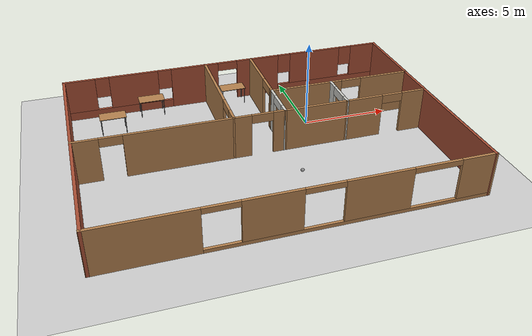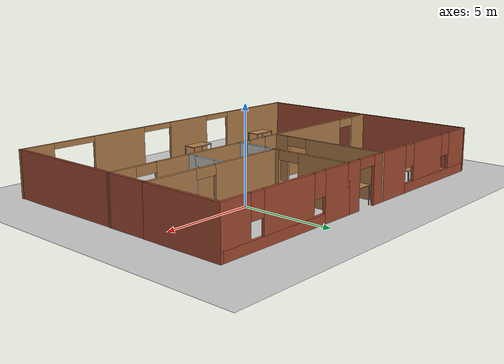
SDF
<sdf version="1.6">
 <world name="default">
  <model name="ground_plane">
   <static>1</static>
   <link name="link">
    <collision name="collision">
     <geometry><plane><normal>0 0 1</normal><size>100 100</size></plane></geometry>
     <surface><friction><ode><mu>100</mu><mu2>50</mu2></ode></friction></surface>
    </collision>
    <visual name="visual">
     <cast_shadows>0</cast_shadows>
     <geometry><plane><normal>0 0 1</normal><size>100 100</size></plane></geometry>
     <material>
      <script><uri>file://media/materials/scripts/gazebo.material</uri><name>Gazebo/Grey</name></script>
     </material>
    </visual>
   </link>
  </model>
  <model name="table">
   <static>1</static>
   <link name="link">
    <collision name="surface">
     <pose>0 0 1 0 -0 0</pose>
     <geometry><box><size>1.5 0.8 0.03</size></box></geometry>
     <surface><friction><ode><mu>0.6</mu><mu2>0.6</mu2></ode></friction></surface>
    </collision>
    <visual name="visual1">
     <pose>0 0 1 0 -0 0</pose>
     <geometry><box><size>1.5 0.8 0.03</size></box></geometry>
     <material>
      <script><uri>file://media/materials/scripts/gazebo.material</uri><name>Gazebo/Wood</name></script>
     </material>
    </visual>
    <collision name="front_left_leg">
     <pose>0.68 0.38 0.5 0 -0 0</pose>
     <geometry><cylinder><radius>0.02</radius><length>1</length></cylinder></geometry>
    </collision>
    <visual name="front_left_leg">
     <pose>0.68 0.38 0.5 0 -0 0</pose>
     <geometry><cylinder><radius>0.02</radius><length>1</length></cylinder></geometry>
     <material>
      <script><uri>file://media/materials/scripts/gazebo.material</uri><name>Gazebo/Grey</name></script>
     </material>
    </visual>
    <collision name="front_right_leg">
     <pose>0.68 -0.38 0.5 0 -0 0</pose>
     <geometry><cylinder><radius>0.02</radius><length>1</length></cylinder></geometry>
    </collision>
    <visual name="front_right_leg">
     <pose>0.68 -0.38 0.5 0 -0 0</pose>
     <geometry><cylinder><radius>0.02</radius><length>1</length></cylinder></geometry>
     <material>
      <script><uri>file://media/materials/scripts/gazebo.material</uri><name>Gazebo/Grey</name></script>
     </material>
    </visual>
    <collision name="back_right_leg">
     <pose>-0.68 -0.38 0.5 0 -0 0</pose>
     <geometry><cylinder><radius>0.02</radius><length>1</length></cylinder></geometry>
    </collision>
    <visual name="back_right_leg">
     <pose>-0.68 -0.38 0.5 0 -0 0</pose>
     <geometry><cylinder><radius>0.02</radius><length>1</length></cylinder></geometry>
     <material>
      <script><uri>file://media/materials/scripts/gazebo.material</uri><name>Gazebo/Grey</name></script>
     </material>
    </visual>
    <collision name="back_left_leg">
     <pose>-0.68 0.38 0.5 0 -0 0</pose>
     <geometry><cylinder><radius>0.02</radius><length>1</length></cylinder></geometry>
    </collision>
    <visual name="back_left_leg">
     <pose>-0.68 0.38 0.5 0 -0 0</pose>
     <geometry><cylinder><radius>0.02</radius><length>1</length></cylinder></geometry>
     <material>
      <script><uri>file://media/materials/scripts/gazebo.material</uri><name>Gazebo/Grey</name></script>
     </material>
    </visual>
   </link>
   <pose>-10.5468 -8.35102 0 0 -0 0</pose>
  </model>
  <model name="Building">
   <pose>-3.56522 -2.42436 0 0 -0 0</pose>
   <link name="Wall_0">
    <pose>0.00123 6.80703 0 0 -0 0</pose>
    <visual name="Wall_0_Visual_0">
     <pose>-1.07927 0 1.25 0 -0 0</pose>
     <geometry><box><size>0.841459 0.15 2.5</size></box></geometry>
     <material>
      <script><uri>file://media/materials/scripts/gazebo.material</uri><name>Gazebo/Bricks</name></script>
      <ambient>1 1 1 1</ambient>
     </material>
     <meta><layer>0</layer></meta>
    </visual>
    <collision name="Wall_0_Collision_0">
     <geometry><box><size>0.841459 0.15 2.5</size></box></geometry>
     <pose>-1.07927 0 1.25 0 -0 0</pose>
    </collision>
    <visual name="Wall_0_Visual_1">
     <pose>1.02073 0 1.25 0 -0 0</pose>
     <geometry><box><size>0.958541 0.15 2.5</size></box></geometry>
     <material>
      <script><uri>file://media/materials/scripts/gazebo.material</uri><name>Gazebo/Bricks</name></script>
      <ambient>1 1 1 1</ambient>
     </material>
     <meta><layer>0</layer></meta>
    </visual>
    <collision name="Wall_0_Collision_1">
     <geometry><box><size>0.958541 0.15 2.5</size></box></geometry>
     <pose>1.02073 0 1.25 0 -0 0</pose>
    </collision>
    <visual name="Wall_0_Visual_2">
     <pose>-0.058541 0 2.25 0 -0 0</pose>
     <geometry><box><size>1.2 0.15 0.5</size></box></geometry>
     <material>
      <script><uri>file://media/materials/scripts/gazebo.material</uri><name>Gazebo/Bricks</name></script>
      <ambient>1 1 1 1</ambient>
     </material>
     <meta><layer>0</layer></meta>
    </visual>
    <collision name="Wall_0_Collision_2">
     <geometry><box><size>1.2 0.15 0.5</size></box></geometry>
     <pose>-0.058541 0 2.25 0 -0 0</pose>
    </collision>
   </link>
   <link name="Wall_1">
    <pose>1.42623 4.63203 0 0 0 -1.5708</pose>
    <visual name="Wall_1_Visual_0">
     <pose>-0.787008 0 1.25 0 -0 0</pose>
     <geometry><box><size>2.92598 0.15 2.5</size></box></geometry>
     <material>
      <script><uri>file://media/materials/scripts/gazebo.material</uri><name>Gazebo/Wood</name></script>
      <ambient>1 1 1 1</ambient>
     </material>
     <meta><layer>0</layer></meta>
    </visual>
    <collision name="Wall_1_Collision_0">
     <geometry><box><size>2.92598 0.15 2.5</size></box></geometry>
     <pose>-0.787008 0 1.25 0 -0 0</pose>
    </collision>
    <visual name="Wall_1_Visual_1">
     <pose>2.06299 0 1.25 0 -0 0</pose>
     <geometry><box><size>0.374017 0.15 2.5</size></box></geometry>
     <material>
      <script><uri>file://media/materials/scripts/gazebo.material</uri><name>Gazebo/Wood</name></script>
      <ambient>1 1 1 1</ambient>
     </material>
     <meta><layer>0</layer></meta>
    </visual>
    <collision name="Wall_1_Collision_1">
     <geometry><box><size>0.374017 0.15 2.5</size></box></geometry>
     <pose>2.06299 0 1.25 0 -0 0</pose>
    </collision>
    <visual name="Wall_1_Visual_2">
     <pose>1.27598 0 2.25 0 -0 0</pose>
     <geometry><box><size>1.2 0.15 0.5</size></box></geometry>
     <material>
      <script><uri>file://media/materials/scripts/gazebo.material</uri><name>Gazebo/Wood</name></script>
      <ambient>1 1 1 1</ambient>
     </material>
     <meta><layer>0</layer></meta>
    </visual>
    <collision name="Wall_1_Collision_2">
     <geometry><box><size>1.2 0.15 0.5</size></box></geometry>
     <pose>1.27598 0 2.25 0 -0 0</pose>
    </collision>
   </link>
   <link name="Wall_10">
    <pose>5.02623 1.28203 0 0 -0 1.5708</pose>
    <visual name="Wall_10_Visual_0">
     <pose>-0.954209 0 1.25 0 -0 0</pose>
     <geometry><box><size>0.591582 0.15 2.5</size></box></geometry>
     <material>
      <script><uri>file://media/materials/scripts/gazebo.material</uri><name>Gazebo/CeilingTiled</name></script>
      <ambient>1 1 1 1</ambient>
     </material>
     <meta><layer>0</layer></meta>
    </visual>
    <collision name="Wall_10_Collision_0">
     <geometry><box><size>0.591582 0.15 2.5</size></box></geometry>
     <pose>-0.954209 0 1.25 0 -0 0</pose>
    </collision>
    <visual name="Wall_10_Visual_1">
     <pose>0.895791 0 1.25 0 -0 0</pose>
     <geometry><box><size>0.708418 0.15 2.5</size></box></geometry>
     <material>
      <script><uri>file://media/materials/scripts/gazebo.material</uri><name>Gazebo/CeilingTiled</name></script>
      <ambient>1 1 1 1</ambient>
     </material>
     <meta><layer>0</layer></meta>
    </visual>
    <collision name="Wall_10_Collision_1">
     <geometry><box><size>0.708418 0.15 2.5</size></box></geometry>
     <pose>0.895791 0 1.25 0 -0 0</pose>
    </collision>
    <visual name="Wall_10_Visual_2">
     <pose>-0.058418 0 2.25 0 -0 0</pose>
     <geometry><box><size>1.2 0.15 0.5</size></box></geometry>
     <material>
      <script><uri>file://media/materials/scripts/gazebo.material</uri><name>Gazebo/CeilingTiled</name></script>
      <ambient>1 1 1 1</ambient>
     </material>
     <meta><layer>0</layer></meta>
    </visual>
    <collision name="Wall_10_Collision_2">
     <geometry><box><size>1.2 0.15 0.5</size></box></geometry>
     <pose>-0.058418 0 2.25 0 -0 0</pose>
    </collision>
   </link>
   <link name="Wall_14">
    <pose>-1.42237 3.45929 0 0 0 -1.57038</pose>
    <visual name="Wall_14_Visual_0">
     <pose>-1.07421 0 1.25 0 -0 0</pose>
     <geometry><box><size>4.69716 0.15 2.5</size></box></geometry>
     <material>
      <script><uri>file://media/materials/scripts/gazebo.material</uri><name>Gazebo/Wood</name></script>
      <ambient>1 1 1 1</ambient>
     </material>
     <meta><layer>0</layer></meta>
    </visual>
    <collision name="Wall_14_Collision_0">
     <geometry><box><size>4.69716 0.15 2.5</size></box></geometry>
     <pose>-1.07421 0 1.25 0 -0 0</pose>
    </collision>
    <visual name="Wall_14_Visual_1">
     <pose>2.94858 0 1.25 0 -0 0</pose>
     <geometry><box><size>0.94843 0.15 2.5</size></box></geometry>
     <material>
      <script><uri>file://media/materials/scripts/gazebo.material</uri><name>Gazebo/Wood</name></script>
      <ambient>1 1 1 1</ambient>
     </material>
     <meta><layer>0</layer></meta>
    </visual>
    <collision name="Wall_14_Collision_1">
     <geometry><box><size>0.94843 0.15 2.5</size></box></geometry>
     <pose>2.94858 0 1.25 0 -0 0</pose>
    </collision>
    <visual name="Wall_14_Visual_2">
     <pose>1.87437 0 2.25 0 -0 0</pose>
     <geometry><box><size>1.2 0.15 0.5</size></box></geometry>
     <material>
      <script><uri>file://media/materials/scripts/gazebo.material</uri><name>Gazebo/Wood</name></script>
      <ambient>1 1 1 1</ambient>
     </material>
     <meta><layer>0</layer></meta>
    </visual>
    <collision name="Wall_14_Collision_2">
     <geometry><box><size>1.2 0.15 0.5</size></box></geometry>
     <pose>1.87437 0 2.25 0 -0 0</pose>
    </collision>
   </link>
   <link name="Wall_15">
    <pose>0.002634 0.109288 0 0 0 -0.001586</pose>
    <visual name="Wall_15_Visual_0">
     <pose>-0.976905 0 1.25 0 -0 0</pose>
     <geometry><box><size>1.04339 0.15 2.5</size></box></geometry>
     <material>
      <script><uri>file://media/materials/scripts/gazebo.material</uri><name>Gazebo/Wood</name></script>
      <ambient>1 1 1 1</ambient>
     </material>
     <meta><layer>0</layer></meta>
    </visual>
    <collision name="Wall_15_Collision_0">
     <geometry><box><size>1.04339 0.15 2.5</size></box></geometry>
     <pose>-0.976905 0 1.25 0 -0 0</pose>
    </collision>
    <visual name="Wall_15_Visual_1">
     <pose>1.12169 0 1.25 0 -0 0</pose>
     <geometry><box><size>0.753809 0.15 2.5</size></box></geometry>
     <material>
      <script><uri>file://media/materials/scripts/gazebo.material</uri><name>Gazebo/Wood</name></script>
      <ambient>1 1 1 1</ambient>
     </material>
     <meta><layer>0</layer></meta>
    </visual>
    <collision name="Wall_15_Collision_1">
     <geometry><box><size>0.753809 0.15 2.5</size></box></geometry>
     <pose>1.12169 0 1.25 0 -0 0</pose>
    </collision>
    <visual name="Wall_15_Visual_2">
     <pose>0.144788 0 2.25 0 -0 0</pose>
     <geometry><box><size>1.2 0.15 0.5</size></box></geometry>
     <material>
      <script><uri>file://media/materials/scripts/gazebo.material</uri><name>Gazebo/Wood</name></script>
      <ambient>1 1 1 1</ambient>
     </material>
     <meta><layer>0</layer></meta>
    </visual>
    <collision name="Wall_15_Collision_2">
     <geometry><box><size>1.2 0.15 0.5</size></box></geometry>
     <pose>0.144788 0 2.25 0 -0 0</pose>
    </collision>
   </link>
   <link name="Wall_17">
    <pose>-5.59877 6.80703 0 0 -0 3.14159</pose>
    <visual name="Wall_17_Visual_0">
     <pose>-3.15253 0 1.25 0 -0 0</pose>
     <geometry><box><size>2.19494 0.15 2.5</size></box></geometry>
     <material>
      <script><uri>file://media/materials/scripts/gazebo.material</uri><name>Gazebo/Bricks</name></script>
      <ambient>1 1 1 1</ambient>
     </material>
     <meta><layer>0</layer></meta>
    </visual>
    <collision name="Wall_17_Collision_0">
     <geometry><box><size>2.19494 0.15 2.5</size></box></geometry>
     <pose>-3.15253 0 1.25 0 -0 0</pose>
    </collision>
    <visual name="Wall_17_Visual_1">
     <pose>1.09747 0 0.25 0 -0 0</pose>
     <geometry><box><size>6.30506 0.15 0.5</size></box></geometry>
     <material>
      <script><uri>file://media/materials/scripts/gazebo.material</uri><name>Gazebo/Bricks</name></script>
      <ambient>1 1 1 1</ambient>
     </material>
     <meta><layer>0</layer></meta>
    </visual>
    <collision name="Wall_17_Collision_1">
     <geometry><box><size>6.30506 0.15 0.5</size></box></geometry>
     <pose>1.09747 0 0.25 0 -0 0</pose>
    </collision>
    <visual name="Wall_17_Visual_2">
     <pose>0.184146 0 1.5 0 -0 0</pose>
     <geometry><box><size>2.8784 0.15 2</size></box></geometry>
     <material>
      <script><uri>file://media/materials/scripts/gazebo.material</uri><name>Gazebo/Bricks</name></script>
      <ambient>1 1 1 1</ambient>
     </material>
     <meta><layer>0</layer></meta>
    </visual>
    <collision name="Wall_17_Collision_2">
     <geometry><box><size>2.8784 0.15 2</size></box></geometry>
     <pose>0.184146 0 1.5 0 -0 0</pose>
    </collision>
    <visual name="Wall_17_Visual_3">
     <pose>3.33667 0 1.5 0 -0 0</pose>
     <geometry><box><size>1.82665 0.15 2</size></box></geometry>
     <material>
      <script><uri>file://media/materials/scripts/gazebo.material</uri><name>Gazebo/Bricks</name></script>
      <ambient>1 1 1 1</ambient>
     </material>
     <meta><layer>0</layer></meta>
    </visual>
    <collision name="Wall_17_Collision_3">
     <geometry><box><size>1.82665 0.15 2</size></box></geometry>
     <pose>3.33667 0 1.5 0 -0 0</pose>
    </collision>
    <visual name="Wall_17_Visual_4">
     <pose>-1.65506 0 1.9 0 -0 0</pose>
     <geometry><box><size>0.8 0.15 1.2</size></box></geometry>
     <material>
      <script><uri>file://media/materials/scripts/gazebo.material</uri><name>Gazebo/Bricks</name></script>
      <ambient>1 1 1 1</ambient>
     </material>
     <meta><layer>0</layer></meta>
    </visual>
    <collision name="Wall_17_Collision_4">
     <geometry><box><size>0.8 0.15 1.2</size></box></geometry>
     <pose>-1.65506 0 1.9 0 -0 0</pose>
    </collision>
    <visual name="Wall_17_Visual_5">
     <pose>2.02335 0 1.9 0 -0 0</pose>
     <geometry><box><size>0.8 0.15 1.2</size></box></geometry>
     <material>
      <script><uri>file://media/materials/scripts/gazebo.material</uri><name>Gazebo/Bricks</name></script>
      <ambient>1 1 1 1</ambient>
     </material>
     <meta><layer>0</layer></meta>
    </visual>
    <collision name="Wall_17_Collision_5">
     <geometry><box><size>0.8 0.15 1.2</size></box></geometry>
     <pose>2.02335 0 1.9 0 -0 0</pose>
    </collision>
   </link>
   <link name="Wall_18">
    <collision name="Wall_18_Collision">
     <geometry><box><size>6.84549 0.15 2.5</size></box></geometry>
     <pose>0 0 1.25 0 -0 0</pose>
    </collision>
    <visual name="Wall_18_Visual">
     <pose>0 0 1.25 0 -0 0</pose>
     <geometry><box><size>6.84549 0.15 2.5</size></box></geometry>
     <material>
      <script><uri>file://media/materials/scripts/gazebo.material</uri><name>Gazebo/Bricks</name></script>
      <ambient>1 1 1 1</ambient>
     </material>
     <meta><layer>0</layer></meta>
    </visual>
    <pose>-9.77237 3.45929 0 0 0 -1.57038</pose>
   </link>
   <link name="Wall_19">
    <pose>-5.59596 0.111546 0 0 -0 0</pose>
    <visual name="Wall_19_Visual_0">
     <pose>-3.53632 0 1.25 0 -0 0</pose>
     <geometry><box><size>1.42737 0.15 2.5</size></box></geometry>
     <material>
      <script><uri>file://media/materials/scripts/gazebo.material</uri><name>Gazebo/Wood</name></script>
      <ambient>1 1 1 1</ambient>
     </material>
     <meta><layer>0</layer></meta>
    </visual>
    <collision name="Wall_19_Collision_0">
     <geometry><box><size>1.42737 0.15 2.5</size></box></geometry>
     <pose>-3.53632 0 1.25 0 -0 0</pose>
    </collision>
    <visual name="Wall_19_Visual_1">
     <pose>1.31368 0 1.25 0 -0 0</pose>
     <geometry><box><size>5.87263 0.15 2.5</size></box></geometry>
     <material>
      <script><uri>file://media/materials/scripts/gazebo.material</uri><name>Gazebo/Wood</name></script>
      <ambient>1 1 1 1</ambient>
     </material>
     <meta><layer>0</layer></meta>
    </visual>
    <collision name="Wall_19_Collision_1">
     <geometry><box><size>5.87263 0.15 2.5</size></box></geometry>
     <pose>1.31368 0 1.25 0 -0 0</pose>
    </collision>
    <visual name="Wall_19_Visual_2">
     <pose>-2.22263 0 2.25 0 -0 0</pose>
     <geometry><box><size>1.2 0.15 0.5</size></box></geometry>
     <material>
      <script><uri>file://media/materials/scripts/gazebo.material</uri><name>Gazebo/Wood</name></script>
      <ambient>1 1 1 1</ambient>
     </material>
     <meta><layer>0</layer></meta>
    </visual>
    <collision name="Wall_19_Collision_2">
     <geometry><box><size>1.2 0.15 0.5</size></box></geometry>
     <pose>-2.22263 0 2.25 0 -0 0</pose>
    </collision>
   </link>
   <link name="Wall_21">
    <collision name="Wall_21_Collision">
     <geometry><box><size>7.06897 0.15 2.5</size></box></geometry>
     <pose>0 0 1.25 0 -0 0</pose>
    </collision>
    <visual name="Wall_21_Visual">
     <pose>0 0 1.25 0 -0 0</pose>
     <geometry><box><size>7.06897 0.15 2.5</size></box></geometry>
     <material>
      <script><uri>file://media/materials/scripts/gazebo.material</uri><name>Gazebo/Bricks</name></script>
      <ambient>1 1 1 1</ambient>
     </material>
     <meta><layer>0</layer></meta>
    </visual>
    <pose>-9.76503 -3.34751 0 0 0 -1.56908</pose>
   </link>
   <link name="Wall_22">
    <pose>0 -6.80657 0 0 -0 0</pose>
    <visual name="Wall_22_Visual_0">
     <pose>-7.30329 0 1.25 0 -0 0</pose>
     <geometry><box><size>5.11 0.15 2.5</size></box></geometry>
     <material>
      <script><uri>file://media/materials/scripts/gazebo.material</uri><name>Gazebo/Wood</name></script>
      <ambient>1 1 1 1</ambient>
     </material>
     <meta><layer>0</layer></meta>
    </visual>
    <collision name="Wall_22_Collision_0">
     <geometry><box><size>5.11 0.15 2.5</size></box></geometry>
     <pose>-7.30329 0 1.25 0 -0 0</pose>
    </collision>
    <visual name="Wall_22_Visual_1">
     <pose>2.555 0 0.1 0 -0 0</pose>
     <geometry><box><size>14.6066 0.15 0.2</size></box></geometry>
     <material>
      <script><uri>file://media/materials/scripts/gazebo.material</uri><name>Gazebo/Wood</name></script>
      <ambient>1 1 1 1</ambient>
     </material>
     <meta><layer>0</layer></meta>
    </visual>
    <collision name="Wall_22_Collision_1">
     <geometry><box><size>14.6066 0.15 0.2</size></box></geometry>
     <pose>2.555 0 0.1 0 -0 0</pose>
    </collision>
    <visual name="Wall_22_Visual_2">
     <pose>-1.47869 0 1.35 0 -0 0</pose>
     <geometry><box><size>2.93921 0.15 2.3</size></box></geometry>
     <material>
      <script><uri>file://media/materials/scripts/gazebo.material</uri><name>Gazebo/Wood</name></script>
      <ambient>1 1 1 1</ambient>
     </material>
     <meta><layer>0</layer></meta>
    </visual>
    <collision name="Wall_22_Collision_2">
     <geometry><box><size>2.93921 0.15 2.3</size></box></geometry>
     <pose>-1.47869 0 1.35 0 -0 0</pose>
    </collision>
    <visual name="Wall_22_Visual_3">
     <pose>3.70769 0 1.35 0 -0 0</pose>
     <geometry><box><size>3.43355 0.15 2.3</size></box></geometry>
     <material>
      <script><uri>file://media/materials/scripts/gazebo.material</uri><name>Gazebo/Wood</name></script>
      <ambient>1 1 1 1</ambient>
     </material>
     <meta><layer>0</layer></meta>
    </visual>
    <collision name="Wall_22_Collision_3">
     <geometry><box><size>3.43355 0.15 2.3</size></box></geometry>
     <pose>3.70769 0 1.35 0 -0 0</pose>
    </collision>
    <visual name="Wall_22_Visual_4">
     <pose>8.89138 0 1.35 0 -0 0</pose>
     <geometry><box><size>1.93382 0.15 2.3</size></box></geometry>
     <material>
      <script><uri>file://media/materials/scripts/gazebo.material</uri><name>Gazebo/Wood</name></script>
      <ambient>1 1 1 1</ambient>
     </material>
     <meta><layer>0</layer></meta>
    </visual>
    <collision name="Wall_22_Collision_4">
     <geometry><box><size>1.93382 0.15 2.3</size></box></geometry>
     <pose>8.89138 0 1.35 0 -0 0</pose>
    </collision>
    <visual name="Wall_22_Visual_5">
     <pose>-3.84829 0 2.35 0 -0 0</pose>
     <geometry><box><size>1.8 0.15 0.3</size></box></geometry>
     <material>
      <script><uri>file://media/materials/scripts/gazebo.material</uri><name>Gazebo/Wood</name></script>
      <ambient>1 1 1 1</ambient>
     </material>
     <meta><layer>0</layer></meta>
    </visual>
    <collision name="Wall_22_Collision_5">
     <geometry><box><size>1.8 0.15 0.3</size></box></geometry>
     <pose>-3.84829 0 2.35 0 -0 0</pose>
    </collision>
    <visual name="Wall_22_Visual_6">
     <pose>0.990915 0 2.35 0 -0 0</pose>
     <geometry><box><size>2 0.15 0.3</size></box></geometry>
     <material>
      <script><uri>file://media/materials/scripts/gazebo.material</uri><name>Gazebo/Wood</name></script>
      <ambient>1 1 1 1</ambient>
     </material>
     <meta><layer>0</layer></meta>
    </visual>
    <collision name="Wall_22_Collision_6">
     <geometry><box><size>2 0.15 0.3</size></box></geometry>
     <pose>0.990915 0 2.35 0 -0 0</pose>
    </collision>
    <visual name="Wall_22_Visual_7">
     <pose>6.67447 0 2.35 0 -0 0</pose>
     <geometry><box><size>2.5 0.15 0.3</size></box></geometry>
     <material>
      <script><uri>file://media/materials/scripts/gazebo.material</uri><name>Gazebo/Wood</name></script>
      <ambient>1 1 1 1</ambient>
     </material>
     <meta><layer>0</layer></meta>
    </visual>
    <collision name="Wall_22_Collision_7">
     <geometry><box><size>2.5 0.15 0.3</size></box></geometry>
     <pose>6.67447 0 2.35 0 -0 0</pose>
    </collision>
   </link>
   <link name="Wall_23">
    <collision name="Wall_23_Collision">
     <geometry><box><size>7.06812 0.15 2.5</size></box></geometry>
     <pose>0 0 1.25 0 -0 0</pose>
    </collision>
    <visual name="Wall_23_Visual">
     <pose>0 0 1.25 0 -0 0</pose>
     <geometry><box><size>7.06812 0.15 2.5</size></box></geometry>
     <material>
      <script><uri>file://media/materials/scripts/gazebo.material</uri><name>Gazebo/Bricks</name></script>
      <ambient>1 1 1 1</ambient>
     </material>
     <meta><layer>0</layer></meta>
    </visual>
    <pose>9.75331 -3.34751 0 0 -0 1.57251</pose>
   </link>
   <link name="Wall_24">
    <pose>7.39883 0.109288 0 0 0 -3.14064</pose>
    <visual name="Wall_24_Visual_0">
     <pose>-1.68708 0 1.25 0 -0 0</pose>
     <geometry><box><size>1.52105 0.15 2.5</size></box></geometry>
     <material>
      <script><uri>file://media/materials/scripts/gazebo.material</uri><name>Gazebo/Wood</name></script>
      <ambient>1 1 1 1</ambient>
     </material>
     <meta><layer>0</layer></meta>
    </visual>
    <collision name="Wall_24_Collision_0">
     <geometry><box><size>1.52105 0.15 2.5</size></box></geometry>
     <pose>-1.68708 0 1.25 0 -0 0</pose>
    </collision>
    <visual name="Wall_24_Visual_1">
     <pose>1.36053 0 1.25 0 -0 0</pose>
     <geometry><box><size>2.17416 0.15 2.5</size></box></geometry>
     <material>
      <script><uri>file://media/materials/scripts/gazebo.material</uri><name>Gazebo/Wood</name></script>
      <ambient>1 1 1 1</ambient>
     </material>
     <meta><layer>0</layer></meta>
    </visual>
    <collision name="Wall_24_Collision_1">
     <geometry><box><size>2.17416 0.15 2.5</size></box></geometry>
     <pose>1.36053 0 1.25 0 -0 0</pose>
    </collision>
    <visual name="Wall_24_Visual_2">
     <pose>-0.326552 0 2.25 0 -0 0</pose>
     <geometry><box><size>1.2 0.15 0.5</size></box></geometry>
     <material>
      <script><uri>file://media/materials/scripts/gazebo.material</uri><name>Gazebo/Wood</name></script>
      <ambient>1 1 1 1</ambient>
     </material>
     <meta><layer>0</layer></meta>
    </visual>
    <collision name="Wall_24_Collision_2">
     <geometry><box><size>1.2 0.15 0.5</size></box></geometry>
     <pose>-0.326552 0 2.25 0 -0 0</pose>
    </collision>
   </link>
   <link name="Wall_26">
    <collision name="Wall_26_Collision">
     <geometry><box><size>2.49552 0.15 2.5</size></box></geometry>
     <pose>0 0 1.25 0 -0 0</pose>
    </collision>
    <visual name="Wall_26_Visual">
     <pose>0 0 1.25 0 -0 0</pose>
     <geometry><box><size>2.49552 0.15 2.5</size></box></geometry>
     <material>
      <script><uri>file://media/materials/scripts/gazebo.material</uri><name>Gazebo/Bricks</name></script>
      <ambient>1 1 1 1</ambient>
     </material>
     <meta><layer>0</layer></meta>
    </visual>
    <pose>9.76487 1.28429 0 0 0 -1.56519</pose>
   </link>
   <link name="Wall_3">
    <pose>5.60123 6.80703 0 0 -0 0</pose>
    <visual name="Wall_3_Visual_0">
     <pose>-3.32227 0 1.25 0 -0 0</pose>
     <geometry><box><size>1.85546 0.15 2.5</size></box></geometry>
     <material>
      <script><uri>file://media/materials/scripts/gazebo.material</uri><name>Gazebo/Bricks</name></script>
      <ambient>1 1 1 1</ambient>
     </material>
     <meta><layer>0</layer></meta>
    </visual>
    <collision name="Wall_3_Collision_0">
     <geometry><box><size>1.85546 0.15 2.5</size></box></geometry>
     <pose>-3.32227 0 1.25 0 -0 0</pose>
    </collision>
    <visual name="Wall_3_Visual_1">
     <pose>0.927733 0 0.25 0 -0 0</pose>
     <geometry><box><size>6.64454 0.15 0.5</size></box></geometry>
     <material>
      <script><uri>file://media/materials/scripts/gazebo.material</uri><name>Gazebo/Bricks</name></script>
      <ambient>1 1 1 1</ambient>
     </material>
     <meta><layer>0</layer></meta>
    </visual>
    <collision name="Wall_3_Collision_1">
     <geometry><box><size>6.64454 0.15 0.5</size></box></geometry>
     <pose>0.927733 0 0.25 0 -0 0</pose>
    </collision>
    <visual name="Wall_3_Visual_2">
     <pose>0.065925 0 1.5 0 -0 0</pose>
     <geometry><box><size>3.32092 0.15 2</size></box></geometry>
     <material>
      <script><uri>file://media/materials/scripts/gazebo.material</uri><name>Gazebo/Bricks</name></script>
      <ambient>1 1 1 1</ambient>
     </material>
     <meta><layer>0</layer></meta>
    </visual>
    <collision name="Wall_3_Collision_2">
     <geometry><box><size>3.32092 0.15 2</size></box></geometry>
     <pose>0.065925 0 1.5 0 -0 0</pose>
    </collision>
    <visual name="Wall_3_Visual_3">
     <pose>3.38819 0 1.5 0 -0 0</pose>
     <geometry><box><size>1.72362 0.15 2</size></box></geometry>
     <material>
      <script><uri>file://media/materials/scripts/gazebo.material</uri><name>Gazebo/Bricks</name></script>
      <ambient>1 1 1 1</ambient>
     </material>
     <meta><layer>0</layer></meta>
    </visual>
    <collision name="Wall_3_Collision_3">
     <geometry><box><size>1.72362 0.15 2</size></box></geometry>
     <pose>3.38819 0 1.5 0 -0 0</pose>
    </collision>
    <visual name="Wall_3_Visual_4">
     <pose>-1.99453 0 1.9 0 -0 0</pose>
     <geometry><box><size>0.8 0.15 1.2</size></box></geometry>
     <material>
      <script><uri>file://media/materials/scripts/gazebo.material</uri><name>Gazebo/Bricks</name></script>
      <ambient>1 1 1 1</ambient>
     </material>
     <meta><layer>0</layer></meta>
    </visual>
    <collision name="Wall_3_Collision_4">
     <geometry><box><size>0.8 0.15 1.2</size></box></geometry>
     <pose>-1.99453 0 1.9 0 -0 0</pose>
    </collision>
    <visual name="Wall_3_Visual_5">
     <pose>2.12638 0 1.9 0 -0 0</pose>
     <geometry><box><size>0.8 0.15 1.2</size></box></geometry>
     <material>
      <script><uri>file://media/materials/scripts/gazebo.material</uri><name>Gazebo/Bricks</name></script>
      <ambient>1 1 1 1</ambient>
     </material>
     <meta><layer>0</layer></meta>
    </visual>
    <collision name="Wall_3_Collision_5">
     <geometry><box><size>0.8 0.15 1.2</size></box></geometry>
     <pose>2.12638 0 1.9 0 -0 0</pose>
    </collision>
   </link>
   <link name="Wall_4">
    <collision name="Wall_4_Collision">
     <geometry><box><size>4.5 0.15 2.5</size></box></geometry>
     <pose>0 0 1.25 0 -0 0</pose>
    </collision>
    <visual name="Wall_4_Visual">
     <pose>0 0 1.25 0 -0 0</pose>
     <geometry><box><size>4.5 0.15 2.5</size></box></geometry>
     <material>
      <script><uri>file://media/materials/scripts/gazebo.material</uri><name>Gazebo/Bricks</name></script>
      <ambient>1 1 1 1</ambient>
     </material>
     <meta><layer>0</layer></meta>
    </visual>
    <pose>9.77623 4.63203 0 0 0 -1.5708</pose>
   </link>
   <link name="Wall_5">
    <pose>5.58329 2.45703 0 0 -0 3.14159</pose>
    <visual name="Wall_5_Visual_0">
     <pose>-2.76355 0 1.25 0 -0 0</pose>
     <geometry><box><size>2.9729 0.15 2.5</size></box></geometry>
     <material>
      <script><uri>file://media/materials/scripts/gazebo.material</uri><name>Gazebo/Wood</name></script>
      <ambient>1 1 1 1</ambient>
     </material>
     <meta><layer>0</layer></meta>
    </visual>
    <collision name="Wall_5_Collision_0">
     <geometry><box><size>2.9729 0.15 2.5</size></box></geometry>
     <pose>-2.76355 0 1.25 0 -0 0</pose>
    </collision>
    <visual name="Wall_5_Visual_1">
     <pose>2.08645 0 1.25 0 -0 0</pose>
     <geometry><box><size>4.3271 0.15 2.5</size></box></geometry>
     <material>
      <script><uri>file://media/materials/scripts/gazebo.material</uri><name>Gazebo/Wood</name></script>
      <ambient>1 1 1 1</ambient>
     </material>
     <meta><layer>0</layer></meta>
    </visual>
    <collision name="Wall_5_Collision_1">
     <geometry><box><size>4.3271 0.15 2.5</size></box></geometry>
     <pose>2.08645 0 1.25 0 -0 0</pose>
    </collision>
    <visual name="Wall_5_Visual_2">
     <pose>-0.677101 0 2.25 0 -0 0</pose>
     <geometry><box><size>1.2 0.15 0.5</size></box></geometry>
     <material>
      <script><uri>file://media/materials/scripts/gazebo.material</uri><name>Gazebo/Wood</name></script>
      <ambient>1 1 1 1</ambient>
     </material>
     <meta><layer>0</layer></meta>
    </visual>
    <collision name="Wall_5_Collision_2">
     <geometry><box><size>1.2 0.15 0.5</size></box></geometry>
     <pose>-0.677101 0 2.25 0 -0 0</pose>
    </collision>
   </link>
   <link name="Wall_8">
    <pose>1.42623 1.28203 0 0 0 -1.5708</pose>
    <visual name="Wall_8_Visual_0">
     <pose>-0.910439 0 1.25 0 -0 0</pose>
     <geometry><box><size>0.679123 0.15 2.5</size></box></geometry>
     <material>
      <script><uri>file://media/materials/scripts/gazebo.material</uri><name>Gazebo/CeilingTiled</name></script>
      <ambient>1 1 1 1</ambient>
     </material>
     <meta><layer>0</layer></meta>
    </visual>
    <collision name="Wall_8_Collision_0">
     <geometry><box><size>0.679123 0.15 2.5</size></box></geometry>
     <pose>-0.910439 0 1.25 0 -0 0</pose>
    </collision>
    <visual name="Wall_8_Visual_1">
     <pose>0.939561 0 1.25 0 -0 0</pose>
     <geometry><box><size>0.620877 0.15 2.5</size></box></geometry>
     <material>
      <script><uri>file://media/materials/scripts/gazebo.material</uri><name>Gazebo/CeilingTiled</name></script>
      <ambient>1 1 1 1</ambient>
     </material>
     <meta><layer>0</layer></meta>
    </visual>
    <collision name="Wall_8_Collision_1">
     <geometry><box><size>0.620877 0.15 2.5</size></box></geometry>
     <pose>0.939561 0 1.25 0 -0 0</pose>
    </collision>
    <visual name="Wall_8_Visual_2">
     <pose>0.029123 0 2.25 0 -0 0</pose>
     <geometry><box><size>1.2 0.15 0.5</size></box></geometry>
     <material>
      <script><uri>file://media/materials/scripts/gazebo.material</uri><name>Gazebo/CeilingTiled</name></script>
      <ambient>1 1 1 1</ambient>
     </material>
     <meta><layer>0</layer></meta>
    </visual>
    <collision name="Wall_8_Collision_2">
     <geometry><box><size>1.2 0.15 0.5</size></box></geometry>
     <pose>0.029123 0 2.25 0 -0 0</pose>
    </collision>
   </link>
   <link name="Wall_9">
    <collision name="Wall_9_Collision">
     <geometry><box><size>3.75 0.15 2.5</size></box></geometry>
     <pose>0 0 1.25 0 -0 0</pose>
    </collision>
    <visual name="Wall_9_Visual">
     <pose>0 0 1.25 0 -0 0</pose>
     <geometry><box><size>3.75 0.15 2.5</size></box></geometry>
     <material>
      <script><uri>file://media/materials/scripts/gazebo.material</uri><name>Gazebo/Wood</name></script>
      <ambient>1 1 1 1</ambient>
     </material>
     <meta><layer>0</layer></meta>
    </visual>
    <pose>3.22623 0.10703 0 0 -0 0</pose>
   </link>
   <static>1</static>
  </model>
  <model name="table_clone">
   <static>1</static>
   <link name="link">
    <collision name="surface">
     <pose>0 0 1 0 -0 0</pose>
     <geometry><box><size>1.5 0.8 0.03</size></box></geometry>
     <surface><friction><ode><mu>0.6</mu><mu2>0.6</mu2></ode></friction></surface>
    </collision>
    <visual name="visual1">
     <pose>0 0 1 0 -0 0</pose>
     <geometry><box><size>1.5 0.8 0.03</size></box></geometry>
     <material>
      <script><uri>file://media/materials/scripts/gazebo.material</uri><name>Gazebo/Wood</name></script>
     </material>
    </visual>
    <collision name="front_left_leg">
     <pose>0.68 0.38 0.5 0 -0 0</pose>
     <geometry><cylinder><radius>0.02</radius><length>1</length></cylinder></geometry>
    </collision>
    <visual name="front_left_leg">
     <pose>0.68 0.38 0.5 0 -0 0</pose>
     <geometry><cylinder><radius>0.02</radius><length>1</length></cylinder></geometry>
     <material>
      <script><uri>file://media/materials/scripts/gazebo.material</uri><name>Gazebo/Grey</name></script>
     </material>
    </visual>
    <collision name="front_right_leg">
     <pose>0.68 -0.38 0.5 0 -0 0</pose>
     <geometry><cylinder><radius>0.02</radius><length>1</length></cylinder></geometry>
    </collision>
    <visual name="front_right_leg">
     <pose>0.68 -0.38 0.5 0 -0 0</pose>
     <geometry><cylinder><radius>0.02</radius><length>1</length></cylinder></geometry>
     <material>
      <script><uri>file://media/materials/scripts/gazebo.material</uri><name>Gazebo/Grey</name></script>
     </material>
    </visual>
    <collision name="back_right_leg">
     <pose>-0.68 -0.38 0.5 0 -0 0</pose>
     <geometry><cylinder><radius>0.02</radius><length>1</length></cylinder></geometry>
    </collision>
    <visual name="back_right_leg">
     <pose>-0.68 -0.38 0.5 0 -0 0</pose>
     <geometry><cylinder><radius>0.02</radius><length>1</length></cylinder></geometry>
     <material>
      <script><uri>file://media/materials/scripts/gazebo.material</uri><name>Gazebo/Grey</name></script>
     </material>
    </visual>
    <collision name="back_left_leg">
     <pose>-0.68 0.38 0.5 0 -0 0</pose>
     <geometry><cylinder><radius>0.02</radius><length>1</length></cylinder></geometry>
    </collision>
    <visual name="back_left_leg">
     <pose>-0.68 0.38 0.5 0 -0 0</pose>
     <geometry><cylinder><radius>0.02</radius><length>1</length></cylinder></geometry>
     <material>
      <script><uri>file://media/materials/scripts/gazebo.material</uri><name>Gazebo/Grey</name></script>
     </material>
    </visual>
   </link>
   <pose>-10.936 2.42939 0 0 -0 0</pose>
  </model>
  <model name="table_clone_0">
   <static>1</static>
   <link name="link">
    <collision name="surface">
     <pose>0 0 1 0 -0 0</pose>
     <geometry><box><size>1.5 0.8 0.03</size></box></geometry>
     <surface><friction><ode><mu>0.6</mu><mu2>0.6</mu2></ode></friction></surface>
    </collision>
    <visual name="visual1">
     <pose>0 0 1 0 -0 0</pose>
     <geometry><box><size>1.5 0.8 0.03</size></box></geometry>
     <material>
      <script><uri>file://media/materials/scripts/gazebo.material</uri><name>Gazebo/Wood</name></script>
     </material>
    </visual>
    <collision name="front_left_leg">
     <pose>0.68 0.38 0.5 0 -0 0</pose>
     <geometry><cylinder><radius>0.02</radius><length>1</length></cylinder></geometry>
    </collision>
    <visual name="front_left_leg">
     <pose>0.68 0.38 0.5 0 -0 0</pose>
     <geometry><cylinder><radius>0.02</radius><length>1</length></cylinder></geometry>
     <material>
      <script><uri>file://media/materials/scripts/gazebo.material</uri><name>Gazebo/Grey</name></script>
     </material>
    </visual>
    <collision name="front_right_leg">
     <pose>0.68 -0.38 0.5 0 -0 0</pose>
     <geometry><cylinder><radius>0.02</radius><length>1</length></cylinder></geometry>
    </collision>
    <visual name="front_right_leg">
     <pose>0.68 -0.38 0.5 0 -0 0</pose>
     <geometry><cylinder><radius>0.02</radius><length>1</length></cylinder></geometry>
     <material>
      <script><uri>file://media/materials/scripts/gazebo.material</uri><name>Gazebo/Grey</name></script>
     </material>
    </visual>
    <collision name="back_right_leg">
     <pose>-0.68 -0.38 0.5 0 -0 0</pose>
     <geometry><cylinder><radius>0.02</radius><length>1</length></cylinder></geometry>
    </collision>
    <visual name="back_right_leg">
     <pose>-0.68 -0.38 0.5 0 -0 0</pose>
     <geometry><cylinder><radius>0.02</radius><length>1</length></cylinder></geometry>
     <material>
      <script><uri>file://media/materials/scripts/gazebo.material</uri><name>Gazebo/Grey</name></script>
     </material>
    </visual>
    <collision name="back_left_leg">
     <pose>-0.68 0.38 0.5 0 -0 0</pose>
     <geometry><cylinder><radius>0.02</radius><length>1</length></cylinder></geometry>
    </collision>
    <visual name="back_left_leg">
     <pose>-0.68 0.38 0.5 0 -0 0</pose>
     <geometry><cylinder><radius>0.02</radius><length>1</length></cylinder></geometry>
     <material>
      <script><uri>file://media/materials/scripts/gazebo.material</uri><name>Gazebo/Grey</name></script>
     </material>
    </visual>
   </link>
   <pose>-5.11418 -8.48956 0 0 -0 0</pose>
  </model>
  <model name="table_0">
   <static>1</static>
   <link name="link">
    <collision name="surface">
     <pose>0 0 1 0 -0 0</pose>
     <geometry><box><size>1.5 0.8 0.03</size></box></geometry>
     <surface><friction><ode><mu>0.6</mu><mu2>0.6</mu2></ode></friction></surface>
    </collision>
    <visual name="visual1">
     <pose>0 0 1 0 -0 0</pose>
     <geometry><box><size>1.5 0.8 0.03</size></box></geometry>
     <material>
      <script><uri>file://media/materials/scripts/gazebo.material</uri><name>Gazebo/Wood</name></script>
     </material>
    </visual>
    <collision name="front_left_leg">
     <pose>0.68 0.38 0.5 0 -0 0</pose>
     <geometry><cylinder><radius>0.02</radius><length>1</length></cylinder></geometry>
    </collision>
    <visual name="front_left_leg">
     <pose>0.68 0.38 0.5 0 -0 0</pose>
     <geometry><cylinder><radius>0.02</radius><length>1</length></cylinder></geometry>
     <material>
      <script><uri>file://media/materials/scripts/gazebo.material</uri><name>Gazebo/Grey</name></script>
     </material>
    </visual>
    <collision name="front_right_leg">
     <pose>0.68 -0.38 0.5 0 -0 0</pose>
     <geometry><cylinder><radius>0.02</radius><length>1</length></cylinder></geometry>
    </collision>
    <visual name="front_right_leg">
     <pose>0.68 -0.38 0.5 0 -0 0</pose>
     <geometry><cylinder><radius>0.02</radius><length>1</length></cylinder></geometry>
     <material>
      <script><uri>file://media/materials/scripts/gazebo.material</uri><name>Gazebo/Grey</name></script>
     </material>
    </visual>
    <collision name="back_right_leg">
     <pose>-0.68 -0.38 0.5 0 -0 0</pose>
     <geometry><cylinder><radius>0.02</radius><length>1</length></cylinder></geometry>
    </collision>
    <visual name="back_right_leg">
     <pose>-0.68 -0.38 0.5 0 -0 0</pose>
     <geometry><cylinder><radius>0.02</radius><length>1</length></cylinder></geometry>
     <material>
      <script><uri>file://media/materials/scripts/gazebo.material</uri><name>Gazebo/Grey</name></script>
     </material>
    </visual>
    <collision name="back_left_leg">
     <pose>-0.68 0.38 0.5 0 -0 0</pose>
     <geometry><cylinder><radius>0.02</radius><length>1</length></cylinder></geometry>
    </collision>
    <visual name="back_left_leg">
     <pose>-0.68 0.38 0.5 0 -0 0</pose>
     <geometry><cylinder><radius>0.02</radius><length>1</length></cylinder></geometry>
     <material>
      <script><uri>file://media/materials/scripts/gazebo.material</uri><name>Gazebo/Grey</name></script>
     </material>
    </visual>
   </link>
   <pose>-3.48003 3.86774 0 0 -0 0</pose>
  </model>
  <model name="table_0_clone">
   <static>1</static>
   <link name="link">
    <collision name="surface">
     <pose>0 0 1 0 -0 0</pose>
     <geometry><box><size>1.5 0.8 0.03</size></box></geometry>
     <surface><friction><ode><mu>0.6</mu><mu2>0.6</mu2></ode></friction></surface>
    </collision>
    <visual name="visual1">
     <pose>0 0 1 0 -0 0</pose>
     <geometry><box><size>1.5 0.8 0.03</size></box></geometry>
     <material>
      <script><uri>file://media/materials/scripts/gazebo.material</uri><name>Gazebo/Wood</name></script>
     </material>
    </visual>
    <collision name="front_left_leg">
     <pose>0.68 0.38 0.5 0 -0 0</pose>
     <geometry><cylinder><radius>0.02</radius><length>1</length></cylinder></geometry>
    </collision>
    <visual name="front_left_leg">
     <pose>0.68 0.38 0.5 0 -0 0</pose>
     <geometry><cylinder><radius>0.02</radius><length>1</length></cylinder></geometry>
     <material>
      <script><uri>file://media/materials/scripts/gazebo.material</uri><name>Gazebo/Grey</name></script>
     </material>
    </visual>
    <collision name="front_right_leg">
     <pose>0.68 -0.38 0.5 0 -0 0</pose>
     <geometry><cylinder><radius>0.02</radius><length>1</length></cylinder></geometry>
    </collision>
    <visual name="front_right_leg">
     <pose>0.68 -0.38 0.5 0 -0 0</pose>
     <geometry><cylinder><radius>0.02</radius><length>1</length></cylinder></geometry>
     <material>
      <script><uri>file://media/materials/scripts/gazebo.material</uri><name>Gazebo/Grey</name></script>
     </material>
    </visual>
    <collision name="back_right_leg">
     <pose>-0.68 -0.38 0.5 0 -0 0</pose>
     <geometry><cylinder><radius>0.02</radius><length>1</length></cylinder></geometry>
    </collision>
    <visual name="back_right_leg">
     <pose>-0.68 -0.38 0.5 0 -0 0</pose>
     <geometry><cylinder><radius>0.02</radius><length>1</length></cylinder></geometry>
     <material>
      <script><uri>file://media/materials/scripts/gazebo.material</uri><name>Gazebo/Grey</name></script>
     </material>
    </visual>
    <collision name="back_left_leg">
     <pose>-0.68 0.38 0.5 0 -0 0</pose>
     <geometry><cylinder><radius>0.02</radius><length>1</length></cylinder></geometry>
    </collision>
    <visual name="back_left_leg">
     <pose>-0.68 0.38 0.5 0 -0 0</pose>
     <geometry><cylinder><radius>0.02</radius><length>1</length></cylinder></geometry>
     <material>
      <script><uri>file://media/materials/scripts/gazebo.material</uri><name>Gazebo/Grey</name></script>
     </material>
    </visual>
   </link>
   <pose>-8.4985 3.85391 0 0 -0 0</pose>
  </model>
  <model name="myball">
   <link name="link_0">
    <inertial>
     <mass>1</mass>
     <inertia><ixx>0.1</ixx><ixy>0</ixy><ixz>0</ixz><iyy>0.1</iyy><iyz>0</iyz><izz>0.1</izz></inertia>
    </inertial>
    <visual name="visual">
     <geometry><sphere><radius>0.1</radius></sphere></geometry>
     <material>
      <lighting>1</lighting>
      <script><uri>file://media/materials/scripts/gazebo.material</uri><name>Gazebo/Grey</name></script>
      <shader type="vertex"><normal_map>__default__</normal_map></shader>
      <ambient>1 1 1 1</ambient>
      <diffuse>1 1 1 1</diffuse>
      <specular>1 1 1 1</specular>
      <emissive>1 1 1 1</emissive>
     </material>
    </visual>
    <collision name="collision">
     <geometry><sphere><radius>0.1</radius></sphere></geometry>
     <surface>
      <friction>
       <ode><mu>1</mu><mu2>1</mu2><fdir1>0 0 0</fdir1><slip1>0</slip1><slip2>0</slip2></ode>
       <torsional>
        <coefficient>1</coefficient>
        <patch_radius>0</patch_radius>
        <surface_radius>0</surface_radius>
        <use_patch_radius>1</use_patch_radius>
        <ode><slip>0</slip></ode>
       </torsional>
      </friction>
      <bounce><restitution_coefficient>0</restitution_coefficient><threshold>1e+06</threshold></bounce>
      <contact>
       <collide_without_contact>0</collide_without_contact>
       <collide_without_contact_bitmask>1</collide_without_contact_bitmask>
       <collide_bitmask>1</collide_bitmask>
       <ode>
        <soft_cfm>0</soft_cfm>
        <soft_erp>0.2</soft_erp>
        <kp>1e+13</kp>
        <kd>1</kd>
        <max_vel>0.01</max_vel>
        <min_depth>0</min_depth>
       </ode>
       <bullet>
        <split_impulse>1</split_impulse>
        <split_impulse_penetration_threshold>-0.01</split_impulse_penetration_threshold>
        <soft_cfm>0</soft_cfm>
        <soft_erp>0.2</soft_erp>
        <kp>1e+13</kp>
        <kd>1</kd>
       </bullet>
      </contact>
     </surface>
    </collision>
   </link>
   <static>0</static>
   <pose>-1.92412 -4.63347 0.1 0 -0 0</pose>
  </model>
 </world>
</sdf>
